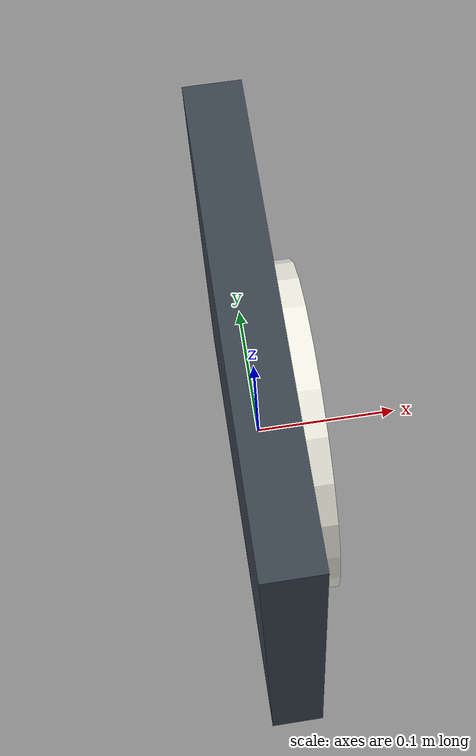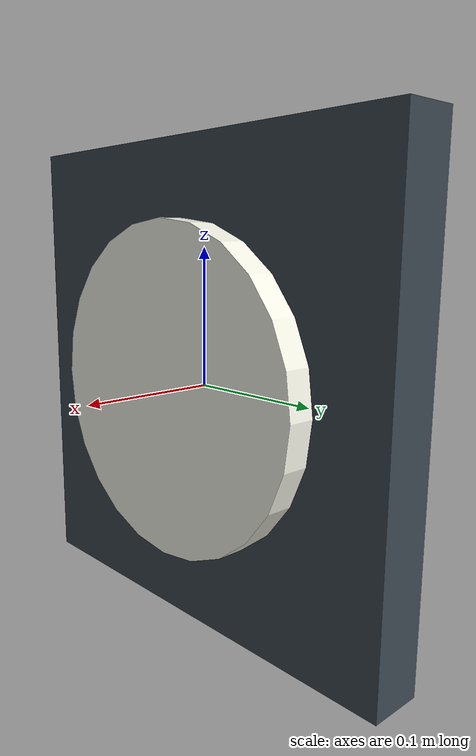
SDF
<?xml version="1.0"?>
<sdf version="1.10">
  <model name="gauge">
    <static>true</static>
    <link name="panel">
      <collision name="collision">
        <geometry><box><size>0.04 0.35 0.35</size></box></geometry>
      </collision>
      <visual name="visual">
        <geometry><box><size>0.04 0.35 0.35</size></box></geometry>
        <material>
          <ambient>0.15 0.18 0.2 1</ambient>
          <diffuse>0.22 0.26 0.3 1</diffuse>
        </material>
      </visual>
    </link>
    <link name="dial">
      <pose>0.03 0 0 0 1.5708 0</pose>
      <visual name="visual">
        <geometry><cylinder><radius>0.12</radius><length>0.02</length></cylinder></geometry>
        <material>
          <ambient>0.85 0.85 0.8 1</ambient>
          <diffuse>0.95 0.95 0.9 1</diffuse>
        </material>
      </visual>
    </link>
  </model>
</sdf>
